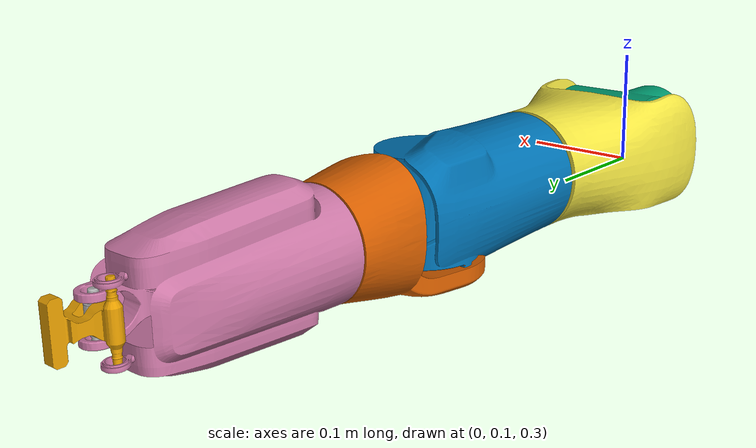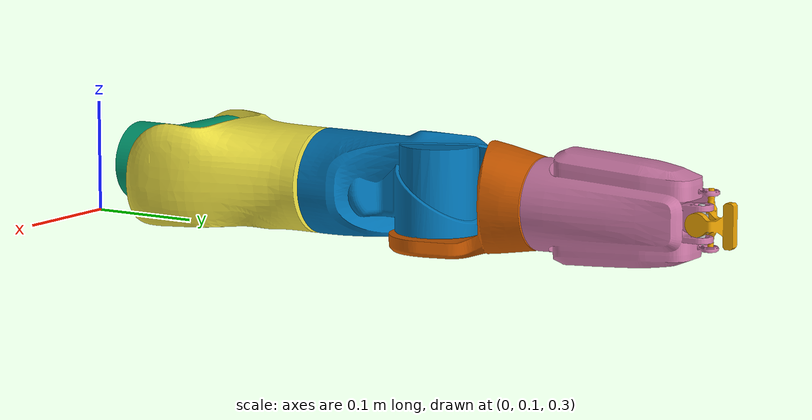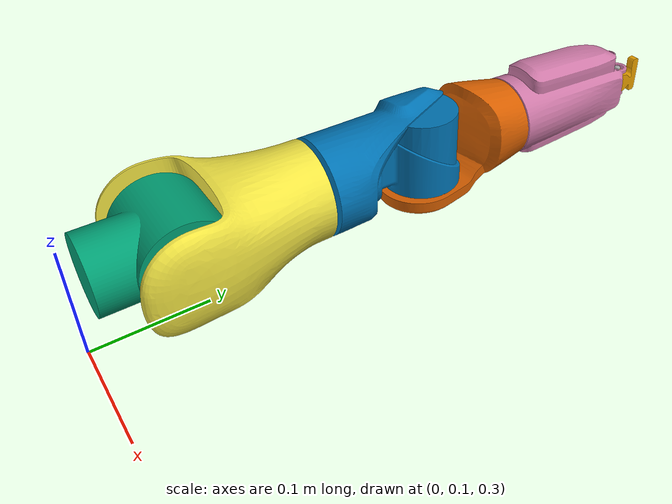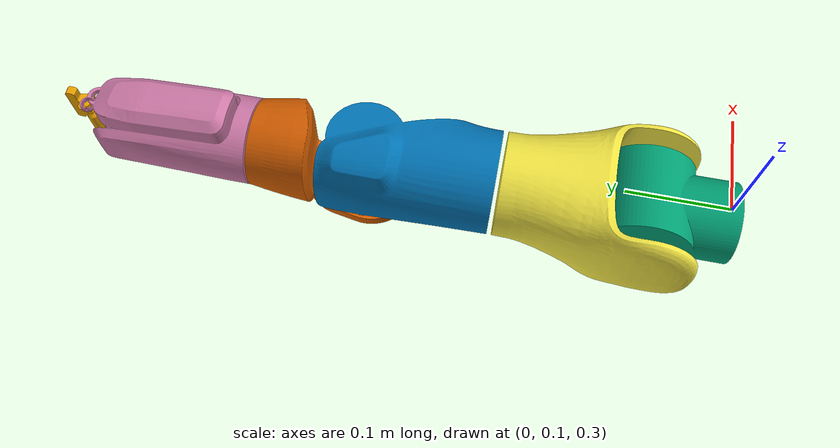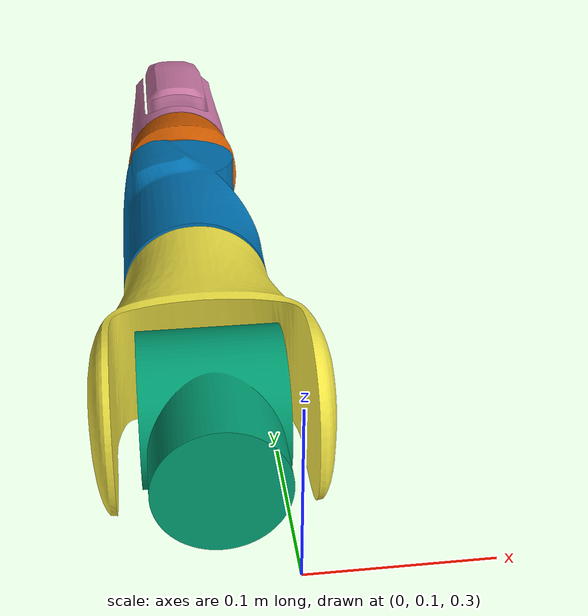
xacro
<?xml version="1.0" ?>
<!-- |    Complete Robot Description for Agibot G1                                     | -->
<!-- |    This file includes the base robot structure and both arms                    | -->
<robot name="LeftArm" xmlns:xacro="http://www.ros.org/wiki/xacro">

	<xacro:arg name="type" default="left"/>

	<xacro:if value="${'$(arg type)' == 'left'}">
		<link name="base_link"/>
		<xacro:include filename="$(find agibot_a2_description)/xacro/arm.xacro"/>
		<xacro:A2Arm name="left" direction="1" joint_idx_offset="13"/>
	</xacro:if>

	<xacro:if value="${'$(arg type)' == 'right'}">
		<link name="base_link"/>
		<xacro:include filename="$(find agibot_a2_description)/xacro/arm.xacro"/>
		<xacro:A2Arm name="right" direction="-1" joint_idx_offset="20"/>
	</xacro:if>

	<xacro:if value="${'$(arg type)' == 'base'}">
		<xacro:include filename="$(find agibot_g1_description)/xacro/g1_base.xacro"/>
	</xacro:if>

	<xacro:if value="${'$(arg type)' == 'left_hand'}">
		<link name="base_link"/>
		<!-- Virtual parent link for hand connection -->
		<link name="left_arm_link07"/>
		<joint name="left_arm_link07_fixed" type="fixed">
			<parent link="base_link"/>
			<child link="left_arm_link07"/>
		</joint>
		<xacro:include filename="$(find agibot_a2_description)/xacro/hand.xacro"/>
		<xacro:A2Hand name="left" direction="1" parent_link="left_arm_link07"/>
	</xacro:if>

	<xacro:if value="${'$(arg type)' == 'right_hand'}">
		<link name="base_link"/>
		<!-- Virtual parent link for hand connection -->
		<link name="right_arm_link07"/>
		<joint name="right_arm_link07_fixed" type="fixed">
			<parent link="base_link"/>
			<child link="right_arm_link07"/>
		</joint>
		<xacro:include filename="$(find agibot_a2_description)/xacro/hand.xacro"/>
		<xacro:A2Hand name="right" direction="-1" parent_link="right_arm_link07"/>
	</xacro:if>

	<xacro:if value="${'$(arg type)' == 'left_leg'}">
		<link name="base_link"/>
		<xacro:include filename="$(find agibot_a2_description)/xacro/leg.xacro"/>
		<xacro:A2Leg name="left" direction="1" joint_idx_offset="1" parent_link="base_link" hip_roll_origin_y="0.105"/>
	</xacro:if>

	<xacro:if value="${'$(arg type)' == 'right_leg'}">
		<link name="base_link"/>
		<xacro:include filename="$(find agibot_a2_description)/xacro/leg.xacro"/>
		<xacro:A2Leg name="right" direction="-1" joint_idx_offset="7" parent_link="base_link" hip_roll_origin_y="-0.105"/>
	</xacro:if>
</robot>

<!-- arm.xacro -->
<robot name="a2_arm" xmlns:xacro="http://www.ros.org/wiki/xacro">

	<!-- A2 Arm Macro
		Parameters:
		- name: arm name prefix (e.g., "left" or "right")
		- direction: direction multiplier (1 for left, -1 for right)
	-->
	<xacro:macro name="A2Arm" params="name direction:=1">
		<xacro:property name="prefix" value="${name + '_' if name else ''}"/>
		<xacro:property name="dir" value="${direction}"/>

		<!-- Arm base link -->
		<link name="${prefix}arm_base"/>
		<joint name="${prefix}arm_base_joint" type="fixed">
			<origin rpy="1.5707963  0 0" xyz="-0.03779 0 0.3421"/>
			<parent link="base_link"/>
			<child link="${prefix}arm_base"/>
		</joint>

		<!-- Arm link 01 -->
		<link name="${prefix}arm_link01">
			<inertial>
				<origin xyz="-0.002330 0.008782 ${dir*0.032870}"/>
				<mass value="0.276944"/>
				<inertia ixx="0.000595" iyy="0.000381" izz="0.000542" ixy="-0.000006" ixz="${-dir*0.000002}"
								 iyz="${dir*0.000053}"/>
			</inertial>
			<visual>
				<geometry>
					<mesh filename="file://$(find agibot_a2_description)/meshes/arm/visual/link1.obj" scale="1 1 ${dir}"/>
				</geometry>
			</visual>
			<collision>
				<geometry>
					<mesh filename="file://$(find agibot_a2_description)/meshes/arm/collision/link1.stl" scale="1 1 ${dir}"/>
				</geometry>
			</collision>
		</link>

		<joint name="${prefix}arm_joint1" type="revolute">
			<origin xyz="-0.0 0.0 ${-dir*0.191}" rpy="0 0 -1.5707963"/>
			<parent link="${prefix}arm_base"/>
			<child link="${prefix}arm_link01"/>
			<axis xyz="0 0 1"/>
			<limit lower="-2.967" upper="2.967" effort="0" velocity="0"/>
		</joint>

		<!-- Arm link 02 -->
		<link name="${prefix}arm_link02">
			<inertial>
				<origin xyz="-0.000451 ${-dir*0.051682} -0.001084"/>
				<mass value="2.852114"/>
				<inertia ixx="0.011984" iyy="0.002880" izz="0.011709" ixy="${dir*0.000039}" ixz="0.000003"
								 iyz="${dir*0.000140}"/>
			</inertial>
			<visual>
				<geometry>
					<mesh filename="file://$(find agibot_a2_description)/meshes/arm/visual/link2.obj" scale="1 ${dir} 1"/>
				</geometry>
			</visual>
			<collision>
				<geometry>
					<mesh filename="file://$(find agibot_a2_description)/meshes/arm/collision/link2.stl" scale="1 ${dir} 1"/>
				</geometry>
			</collision>
		</link>

		<joint name="${prefix}arm_joint2" type="revolute">
			<origin xyz="0 0 -0.0" rpy="1.5707963 0 0"/>
			<parent link="${prefix}arm_link01"/>
			<child link="${prefix}arm_link02"/>
			<axis xyz="0 0 ${dir}"/>
			<limit lower="-0.523598767" upper="1.658062761" effort="0" velocity="0"/>
		</joint>

		<!-- Arm link 03 -->
		<link name="${prefix}arm_link03">
			<inertial>
				<origin xyz="-0.000673 0.001065 ${dir*0.079222}"/>
				<mass value="1.310295"/>
				<inertia ixx="0.002030" iyy="0.002186" izz="0.001189" ixy="-0.000008" ixz="${dir*0.000005}"
								 iyz="${dir*0.000018}"/>
			</inertial>
			<visual>
				<geometry>
					<mesh filename="file://$(find agibot_a2_description)/meshes/arm/visual/link3.obj" scale="1 1 ${dir}"/>
				</geometry>
			</visual>
			<collision>
				<geometry>
					<mesh filename="file://$(find agibot_a2_description)/meshes/arm/collision/link3.stl" scale="1 1 ${dir}"/>
				</geometry>
			</collision>
		</link>

		<joint name="${prefix}arm_joint3" type="revolute">
			<origin rpy="1.5707963 0 0" xyz="0 ${-dir*0.154} 0"/>
			<parent link="${prefix}arm_link02"/>
			<child link="${prefix}arm_link03"/>
			<axis xyz="0 0 1"/>
			<limit lower="-2.967" upper="2.967" effort="0" velocity="0"/>
		</joint>

		<!-- Arm link 04 -->
		<link name="${prefix}arm_link04">
			<inertial>
				<origin xyz="0.000273 ${-dir*0.066853} -0.007408"/>
				<mass value="0.677343"/>
				<inertia ixx="0.000893" iyy="0.000508" izz="0.000767" ixy="${-dir*0.000001}" ixz="-0.000002"
								 iyz="${dir*0.000238}"/>
			</inertial>
			<visual>
				<geometry>
					<mesh filename="file://$(find agibot_a2_description)/meshes/arm/visual/link4.obj" scale="1 ${dir} 1"/>
				</geometry>
			</visual>
			<collision>
				<geometry>
					<mesh filename="file://$(find agibot_a2_description)/meshes/arm/collision/link4.stl" scale="1 ${dir} 1"/>
				</geometry>
			</collision>
		</link>

		<joint name="${prefix}arm_joint4" type="revolute">
			<origin xyz="0 0 ${dir*0.093}" rpy="-1.5707963  0  1.5707963"/>
			<parent link="${prefix}arm_link03"/>
			<child link="${prefix}arm_link04"/>
			<axis xyz="0 0 ${-dir}"/>
			<limit lower="0" upper="2.094395067" effort="0" velocity="0"/>
		</joint>

		<!-- Arm link 05 -->
		<link name="${prefix}arm_link05">
			<inertial>
				<origin xyz="-0.001962 -0.000002 ${dir*0.071786}"/>
				<mass value="0.260886"/>
				<inertia ixx="0.000638" iyy="0.000618" izz="0.000229" ixy="0.000000" ixz="${dir*0.000015}" iyz="0.000000"/>
			</inertial>
			<visual>
				<geometry>
					<mesh filename="file://$(find agibot_a2_description)/meshes/arm/visual/link5.obj" scale="1 1 ${dir}"/>
				</geometry>
			</visual>
			<collision>
				<geometry>
					<mesh filename="file://$(find agibot_a2_description)/meshes/arm/collision/link5.stl" scale="1 1 ${dir}"/>
				</geometry>
			</collision>
		</link>

		<joint name="${prefix}arm_joint5" type="revolute">
			<origin xyz="0  ${-dir*0.103} 0.0" rpy="1.5707963 0 0"/>
			<parent link="${prefix}arm_link04"/>
			<child link="${prefix}arm_link05"/>
			<axis xyz="0 0 1"/>
			<limit lower="-2.87979" upper="2.87979" velocity="0.0" effort="0"/>
		</joint>

		<!-- Arm link 06 -->
		<link name="${prefix}arm_link06">
			<inertial>
				<origin xyz="0.00018011 -0.00021701 0.00000000"/>
				<mass value="0.02504627"/>
				<inertia ixx="0.00000197" iyy="0.00000173" izz="0.00000071" ixy="0.00000000" ixz="0.00000000" iyz="0.00000000"/>
			</inertial>
			<visual name="">
				<geometry>
					<mesh filename="file://$(find agibot_a2_description)/meshes/arm/visual/link6.obj"/>
				</geometry>
			</visual>
		</link>

		<joint name="${prefix}arm_joint6" type="revolute">
			<origin xyz="-0.01 0 ${dir*0.1595}" rpy="-1.5707963 1.5707963 0"/>
			<parent link="${prefix}arm_link05"/>
			<child link="${prefix}arm_link06"/>
			<axis xyz="0 0 1"/>
			<limit lower="-0.785398" upper="0.785398" velocity="0.0" effort="0"/>
		</joint>

		<!-- Arm link 07 -->
		<link name="${prefix}arm_link07">
			<inertial>
				<origin xyz="${-dir*0.01211757} -0.00009712 0.00886324"/>
				<mass value="0.05050219"/>
				<inertia ixx="0.00000828" iyy="0.00001140" izz="0.00001294" ixy="${dir*0.00000006}" ixz="${-dir*0.00000179}"
								 iyz="0.00000004"/>
			</inertial>
			<visual>
				<geometry>
					<mesh filename="file://$(find agibot_a2_description)/meshes/arm/visual/link7.obj" scale="${dir} 1 1"/>
				</geometry>
			</visual>
		</link>

		<joint name="${prefix}arm_joint7" type="revolute">
			<origin xyz="0 0 0" rpy="1.5707963 0 0"/>
			<parent link="${prefix}arm_link06"/>
			<child link="${prefix}arm_link07"/>
			<axis xyz="0 0 1"/>
			<limit lower="-0.5236" upper="0.5236" effort="0" velocity="0"/>
		</joint>

	</xacro:macro>

</robot>
